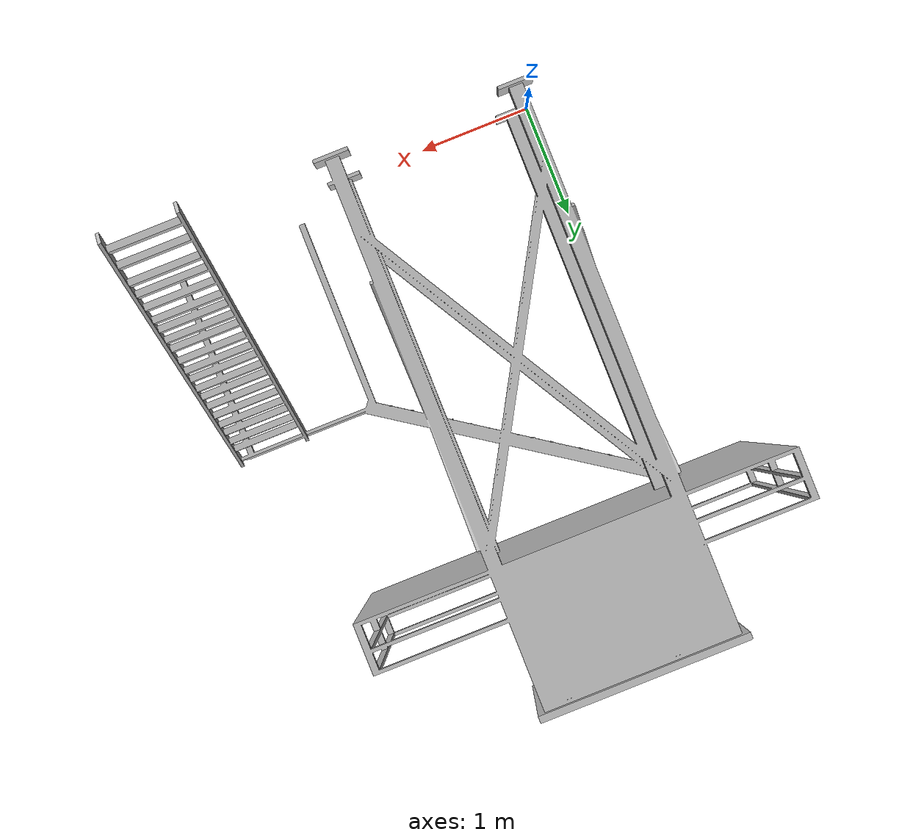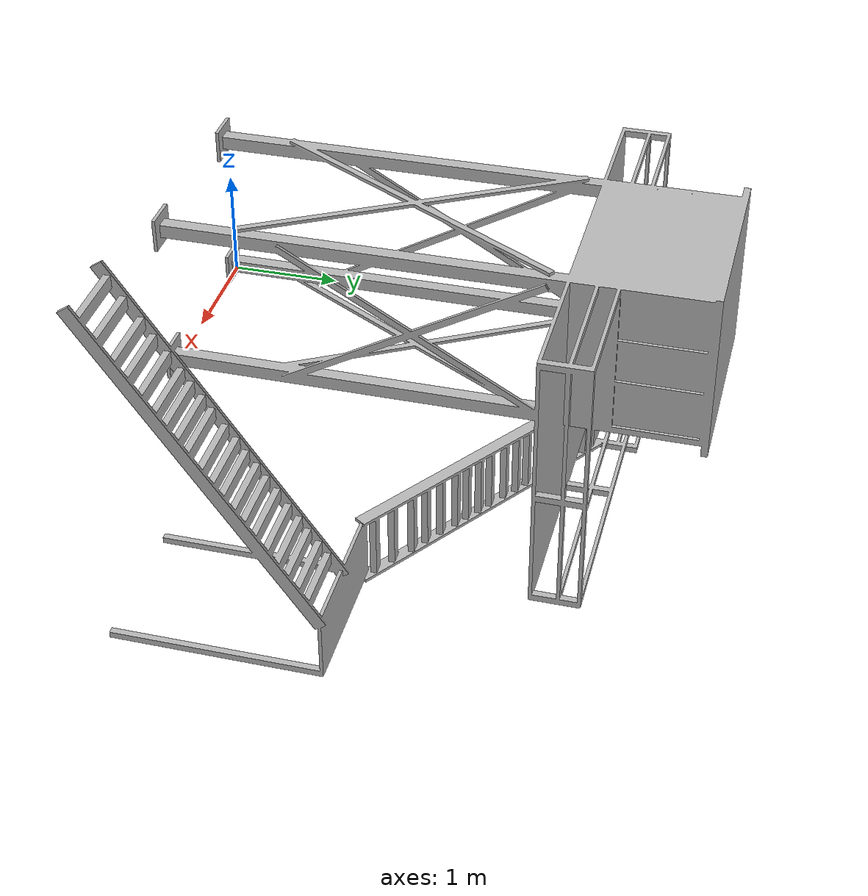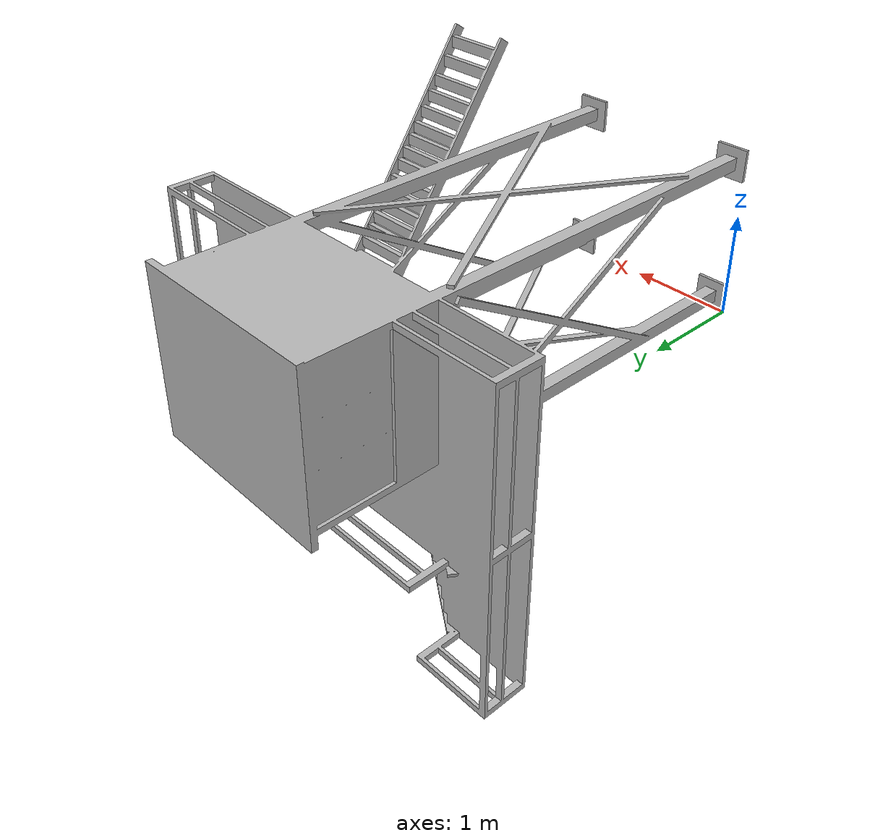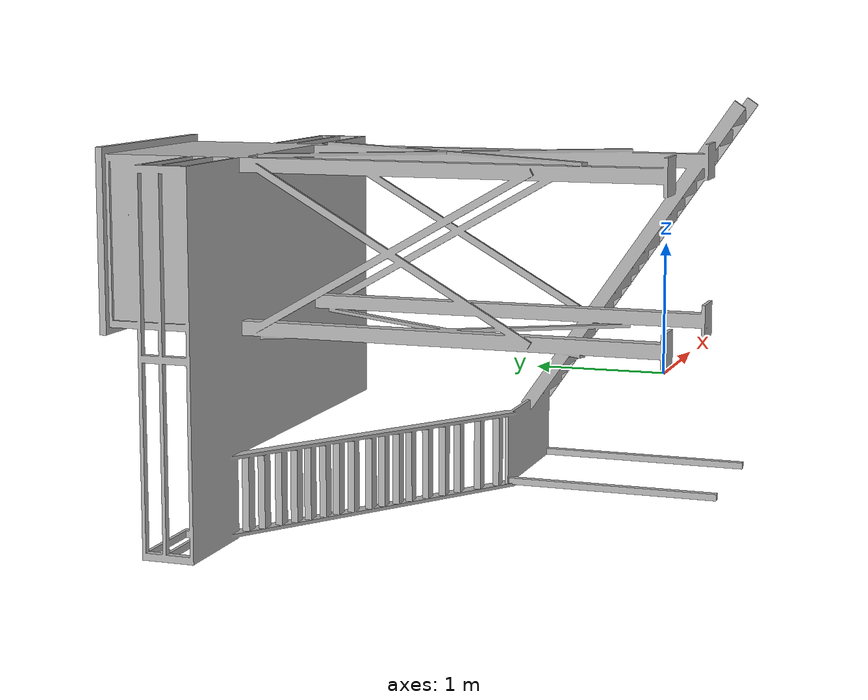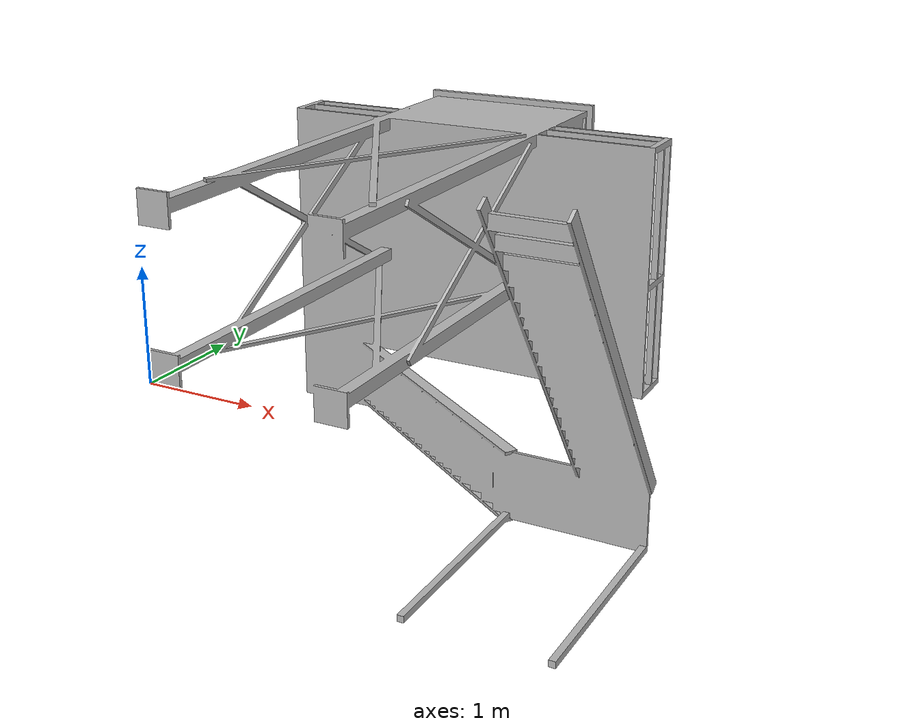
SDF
<?xml version="1.0"?>
<sdf version="1.7">
  <model name="watchtower_new">
    <static>true</static>
    <link name="link">
      <visual name="visual">
        <geometry>
          <mesh>
            <uri>package://41068_ignition_bringup/models/Buildings/watchtower_new/meshes/watchtower_new.obj</uri>
            <scale>0.15 0.15 0.15</scale>
          </mesh>
        </geometry>
      </visual>
      <collision name="collision">
        <geometry>
          <mesh>
            <uri>package://41068_ignition_bringup/models/Buildings/watchtower_new/meshes/watchtower_new.obj</uri>
            <scale>0.15 0.15 0.15</scale>
          </mesh>
        </geometry>
      </collision>
    </link>
  </model>
</sdf>
